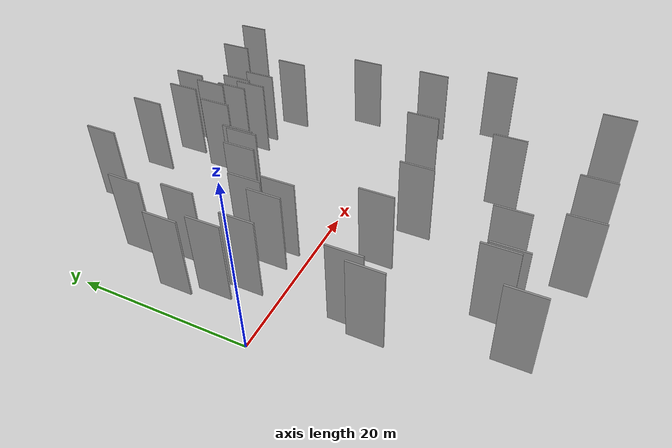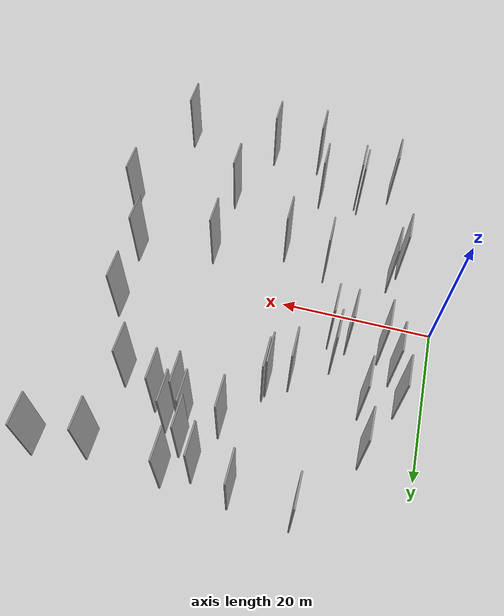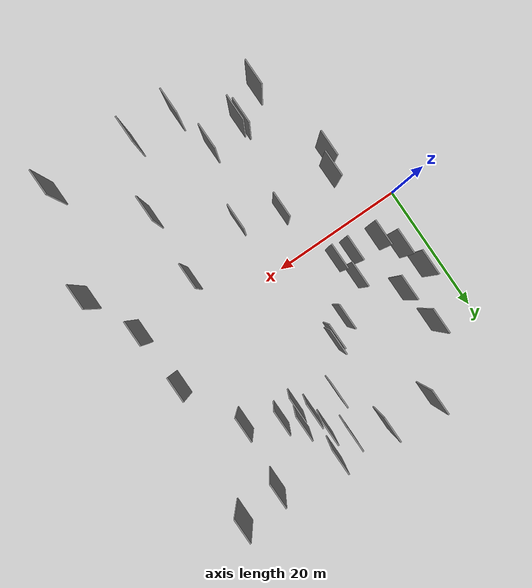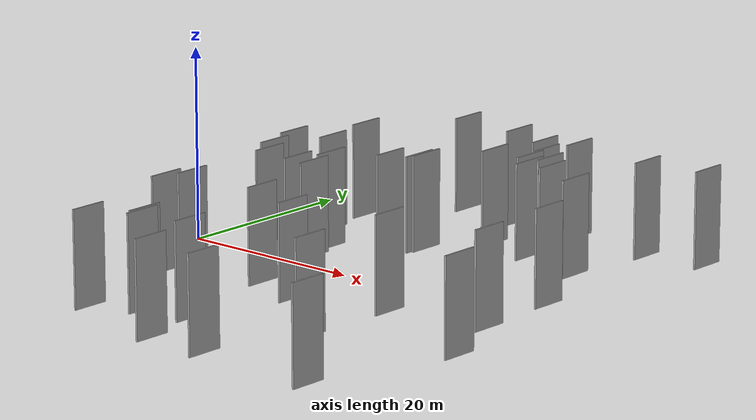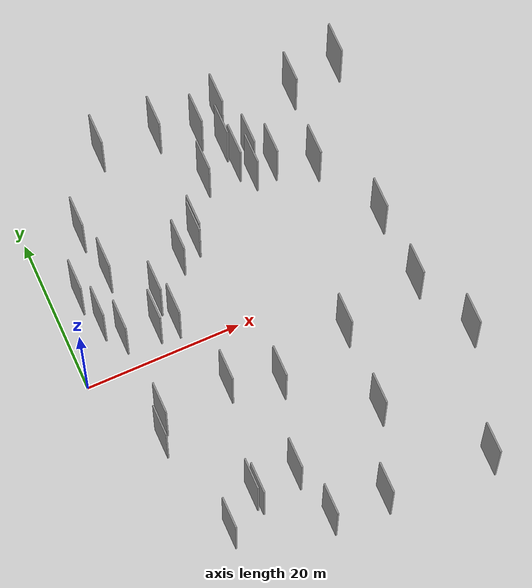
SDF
<sdf version="1.6">
 <world name="default">
  <scene>
   <sky><clouds><speed>12</speed></clouds></sky>
   <ambient>0.4 0.4 0.4 1</ambient>
   <background>0.7 0.7 0.7 1</background>
   <shadows>1</shadows>
  </scene>
  <gravity>0 0 -9.8066</gravity>
  <magnetic_field>6e-06 2.3e-05 -4.2e-05</magnetic_field>
  <physics default="0" name="default_physics" type="ode">
   <ode>
    <solver>
     <type>quick</type>
     <iters>10</iters>
     <sor>1.0</sor>
     <use_dynamic_moi_rescaling>0</use_dynamic_moi_rescaling>
    </solver>
    <constraints>
     <cfm>0</cfm>
     <erp>0.2</erp>
     <contact_max_correcting_vel>100</contact_max_correcting_vel>
     <contact_surface_layer>0.001</contact_surface_layer>
    </constraints>
   </ode>
   <max_step_size>0.004</max_step_size>
   <real_time_factor>1</real_time_factor>
   <real_time_update_rate>250</real_time_update_rate>
  </physics>
  <light name="sun" type="directional">
   <pose>0 0 10 0 0 0</pose>
   <diffuse>0.8 0.8 0.8 1</diffuse>
   <specular>0.2 0.2 0.2 1</specular>
   <attenuation>
    <range>1000</range>
    <constant>0.9</constant>
    <linear>0.01</linear>
    <quadratic>0.001</quadratic>
   </attenuation>
   <direction>-0.5 0.1 -0.9</direction>
  </light>
  <model name="grey_wall_1">
   <static>1</static>
   <pose>27.8386 19.0974 0.0 0.000000 0.000000 1.570796</pose>
   <link name="link">
    <pose>0 0 5.00 0 0 0</pose>
    <collision name="collision"><geometry><box><size>4.00 0.2 10.00</size></box></geometry></collision>
    <visual name="visual">
     <cast_shadows>0</cast_shadows>
     <geometry><box><size>4.00 0.2 10.00</size></box></geometry>
     <material>
      <script>
       <uri>model://grey_wall/materials/scripts</uri>
       <uri>model://grey_wall/materials/textures</uri>
       <name>vrc/grey_wall</name>
      </script>
     </material>
    </visual>
   </link>
  </model>
  <model name="grey_wall_2">
   <static>1</static>
   <pose>31.9971 17.4244 0.0 0.000000 0.000000 1.570796</pose>
   <link name="link">
    <pose>0 0 5.00 0 0 0</pose>
    <collision name="collision"><geometry><box><size>4.00 0.2 10.00</size></box></geometry></collision>
    <visual name="visual">
     <cast_shadows>0</cast_shadows>
     <geometry><box><size>4.00 0.2 10.00</size></box></geometry>
     <material>
      <script>
       <uri>model://grey_wall/materials/scripts</uri>
       <uri>model://grey_wall/materials/textures</uri>
       <name>vrc/grey_wall</name>
      </script>
     </material>
    </visual>
   </link>
  </model>
  <model name="grey_wall_3">
   <static>1</static>
   <pose>6.2617 3.9790 0.0 0.000000 0.000000 1.570796</pose>
   <link name="link">
    <pose>0 0 5.00 0 0 0</pose>
    <collision name="collision"><geometry><box><size>4.00 0.2 10.00</size></box></geometry></collision>
    <visual name="visual">
     <cast_shadows>0</cast_shadows>
     <geometry><box><size>4.00 0.2 10.00</size></box></geometry>
     <material>
      <script>
       <uri>model://grey_wall/materials/scripts</uri>
       <uri>model://grey_wall/materials/textures</uri>
       <name>vrc/grey_wall</name>
      </script>
     </material>
    </visual>
   </link>
  </model>
  <model name="grey_wall_4">
   <static>1</static>
   <pose>7.5539 12.0674 0.0 0.000000 0.000000 1.570796</pose>
   <link name="link">
    <pose>0 0 5.00 0 0 0</pose>
    <collision name="collision"><geometry><box><size>4.00 0.2 10.00</size></box></geometry></collision>
    <visual name="visual">
     <cast_shadows>0</cast_shadows>
     <geometry><box><size>4.00 0.2 10.00</size></box></geometry>
     <material>
      <script>
       <uri>model://grey_wall/materials/scripts</uri>
       <uri>model://grey_wall/materials/textures</uri>
       <name>vrc/grey_wall</name>
      </script>
     </material>
    </visual>
   </link>
  </model>
  <model name="grey_wall_5">
   <static>1</static>
   <pose>16.6574 10.5608 0.0 0.000000 0.000000 1.570796</pose>
   <link name="link">
    <pose>0 0 5.00 0 0 0</pose>
    <collision name="collision"><geometry><box><size>4.00 0.2 10.00</size></box></geometry></collision>
    <visual name="visual">
     <cast_shadows>0</cast_shadows>
     <geometry><box><size>4.00 0.2 10.00</size></box></geometry>
     <material>
      <script>
       <uri>model://grey_wall/materials/scripts</uri>
       <uri>model://grey_wall/materials/textures</uri>
       <name>vrc/grey_wall</name>
      </script>
     </material>
    </visual>
   </link>
  </model>
  <model name="grey_wall_6">
   <static>1</static>
   <pose>40.6920 -27.8204 0.0 0.000000 0.000000 1.570796</pose>
   <link name="link">
    <pose>0 0 5.00 0 0 0</pose>
    <collision name="collision"><geometry><box><size>4.00 0.2 10.00</size></box></geometry></collision>
    <visual name="visual">
     <cast_shadows>0</cast_shadows>
     <geometry><box><size>4.00 0.2 10.00</size></box></geometry>
     <material>
      <script>
       <uri>model://grey_wall/materials/scripts</uri>
       <uri>model://grey_wall/materials/textures</uri>
       <name>vrc/grey_wall</name>
      </script>
     </material>
    </visual>
   </link>
  </model>
  <model name="grey_wall_7">
   <static>1</static>
   <pose>21.4658 -9.0196 0.0 0.000000 0.000000 1.570796</pose>
   <link name="link">
    <pose>0 0 5.00 0 0 0</pose>
    <collision name="collision"><geometry><box><size>4.00 0.2 10.00</size></box></geometry></collision>
    <visual name="visual">
     <cast_shadows>0</cast_shadows>
     <geometry><box><size>4.00 0.2 10.00</size></box></geometry>
     <material>
      <script>
       <uri>model://grey_wall/materials/scripts</uri>
       <uri>model://grey_wall/materials/textures</uri>
       <name>vrc/grey_wall</name>
      </script>
     </material>
    </visual>
   </link>
  </model>
  <model name="grey_wall_8">
   <static>1</static>
   <pose>36.7858 15.1827 0.0 0.000000 0.000000 1.570796</pose>
   <link name="link">
    <pose>0 0 5.00 0 0 0</pose>
    <collision name="collision"><geometry><box><size>4.00 0.2 10.00</size></box></geometry></collision>
    <visual name="visual">
     <cast_shadows>0</cast_shadows>
     <geometry><box><size>4.00 0.2 10.00</size></box></geometry>
     <material>
      <script>
       <uri>model://grey_wall/materials/scripts</uri>
       <uri>model://grey_wall/materials/textures</uri>
       <name>vrc/grey_wall</name>
      </script>
     </material>
    </visual>
   </link>
  </model>
  <model name="grey_wall_9">
   <static>1</static>
   <pose>31.3133 -6.1245 0.0 0.000000 0.000000 1.570796</pose>
   <link name="link">
    <pose>0 0 5.00 0 0 0</pose>
    <collision name="collision"><geometry><box><size>4.00 0.2 10.00</size></box></geometry></collision>
    <visual name="visual">
     <cast_shadows>0</cast_shadows>
     <geometry><box><size>4.00 0.2 10.00</size></box></geometry>
     <material>
      <script>
       <uri>model://grey_wall/materials/scripts</uri>
       <uri>model://grey_wall/materials/textures</uri>
       <name>vrc/grey_wall</name>
      </script>
     </material>
    </visual>
   </link>
  </model>
  <model name="grey_wall_10">
   <static>1</static>
   <pose>13.2317 -21.1327 0.0 0.000000 0.000000 1.570796</pose>
   <link name="link">
    <pose>0 0 5.00 0 0 0</pose>
    <collision name="collision"><geometry><box><size>4.00 0.2 10.00</size></box></geometry></collision>
    <visual name="visual">
     <cast_shadows>0</cast_shadows>
     <geometry><box><size>4.00 0.2 10.00</size></box></geometry>
     <material>
      <script>
       <uri>model://grey_wall/materials/scripts</uri>
       <uri>model://grey_wall/materials/textures</uri>
       <name>vrc/grey_wall</name>
      </script>
     </material>
    </visual>
   </link>
  </model>
  <model name="grey_wall_11">
   <static>1</static>
   <pose>12.0053 6.8446 0.0 0.000000 0.000000 1.570796</pose>
   <link name="link">
    <pose>0 0 5.00 0 0 0</pose>
    <collision name="collision"><geometry><box><size>4.00 0.2 10.00</size></box></geometry></collision>
    <visual name="visual">
     <cast_shadows>0</cast_shadows>
     <geometry><box><size>4.00 0.2 10.00</size></box></geometry>
     <material>
      <script>
       <uri>model://grey_wall/materials/scripts</uri>
       <uri>model://grey_wall/materials/textures</uri>
       <name>vrc/grey_wall</name>
      </script>
     </material>
    </visual>
   </link>
  </model>
  <model name="grey_wall_12">
   <static>1</static>
   <pose>28.4717 26.1268 0.0 0.000000 0.000000 1.570796</pose>
   <link name="link">
    <pose>0 0 5.00 0 0 0</pose>
    <collision name="collision"><geometry><box><size>4.00 0.2 10.00</size></box></geometry></collision>
    <visual name="visual">
     <cast_shadows>0</cast_shadows>
     <geometry><box><size>4.00 0.2 10.00</size></box></geometry>
     <material>
      <script>
       <uri>model://grey_wall/materials/scripts</uri>
       <uri>model://grey_wall/materials/textures</uri>
       <name>vrc/grey_wall</name>
      </script>
     </material>
    </visual>
   </link>
  </model>
  <model name="grey_wall_13">
   <static>1</static>
   <pose>25.1381 24.7021 0.0 0.000000 0.000000 1.570796</pose>
   <link name="link">
    <pose>0 0 5.00 0 0 0</pose>
    <collision name="collision"><geometry><box><size>4.00 0.2 10.00</size></box></geometry></collision>
    <visual name="visual">
     <cast_shadows>0</cast_shadows>
     <geometry><box><size>4.00 0.2 10.00</size></box></geometry>
     <material>
      <script>
       <uri>model://grey_wall/materials/scripts</uri>
       <uri>model://grey_wall/materials/textures</uri>
       <name>vrc/grey_wall</name>
      </script>
     </material>
    </visual>
   </link>
  </model>
  <model name="grey_wall_14">
   <static>1</static>
   <pose>12.9309 3.3106 0.0 0.000000 0.000000 1.570796</pose>
   <link name="link">
    <pose>0 0 5.00 0 0 0</pose>
    <collision name="collision"><geometry><box><size>4.00 0.2 10.00</size></box></geometry></collision>
    <visual name="visual">
     <cast_shadows>0</cast_shadows>
     <geometry><box><size>4.00 0.2 10.00</size></box></geometry>
     <material>
      <script>
       <uri>model://grey_wall/materials/scripts</uri>
       <uri>model://grey_wall/materials/textures</uri>
       <name>vrc/grey_wall</name>
      </script>
     </material>
    </visual>
   </link>
  </model>
  <model name="grey_wall_15">
   <static>1</static>
   <pose>6.6121 18.1727 0.0 0.000000 0.000000 1.570796</pose>
   <link name="link">
    <pose>0 0 5.00 0 0 0</pose>
    <collision name="collision"><geometry><box><size>4.00 0.2 10.00</size></box></geometry></collision>
    <visual name="visual">
     <cast_shadows>0</cast_shadows>
     <geometry><box><size>4.00 0.2 10.00</size></box></geometry>
     <material>
      <script>
       <uri>model://grey_wall/materials/scripts</uri>
       <uri>model://grey_wall/materials/textures</uri>
       <name>vrc/grey_wall</name>
      </script>
     </material>
    </visual>
   </link>
  </model>
  <model name="grey_wall_16">
   <static>1</static>
   <pose>10.5438 3.5574 0.0 0.000000 0.000000 1.570796</pose>
   <link name="link">
    <pose>0 0 5.00 0 0 0</pose>
    <collision name="collision"><geometry><box><size>4.00 0.2 10.00</size></box></geometry></collision>
    <visual name="visual">
     <cast_shadows>0</cast_shadows>
     <geometry><box><size>4.00 0.2 10.00</size></box></geometry>
     <material>
      <script>
       <uri>model://grey_wall/materials/scripts</uri>
       <uri>model://grey_wall/materials/textures</uri>
       <name>vrc/grey_wall</name>
      </script>
     </material>
    </visual>
   </link>
  </model>
  <model name="grey_wall_17">
   <static>1</static>
   <pose>37.9804 25.1454 0.0 0.000000 0.000000 1.570796</pose>
   <link name="link">
    <pose>0 0 5.00 0 0 0</pose>
    <collision name="collision"><geometry><box><size>4.00 0.2 10.00</size></box></geometry></collision>
    <visual name="visual">
     <cast_shadows>0</cast_shadows>
     <geometry><box><size>4.00 0.2 10.00</size></box></geometry>
     <material>
      <script>
       <uri>model://grey_wall/materials/scripts</uri>
       <uri>model://grey_wall/materials/textures</uri>
       <name>vrc/grey_wall</name>
      </script>
     </material>
    </visual>
   </link>
  </model>
  <model name="grey_wall_18">
   <static>1</static>
   <pose>30.9320 -16.8764 0.0 0.000000 0.000000 1.570796</pose>
   <link name="link">
    <pose>0 0 5.00 0 0 0</pose>
    <collision name="collision"><geometry><box><size>4.00 0.2 10.00</size></box></geometry></collision>
    <visual name="visual">
     <cast_shadows>0</cast_shadows>
     <geometry><box><size>4.00 0.2 10.00</size></box></geometry>
     <material>
      <script>
       <uri>model://grey_wall/materials/scripts</uri>
       <uri>model://grey_wall/materials/textures</uri>
       <name>vrc/grey_wall</name>
      </script>
     </material>
    </visual>
   </link>
  </model>
  <model name="grey_wall_19">
   <static>1</static>
   <pose>6.5469 -7.4695 0.0 0.000000 0.000000 1.570796</pose>
   <link name="link">
    <pose>0 0 5.00 0 0 0</pose>
    <collision name="collision"><geometry><box><size>4.00 0.2 10.00</size></box></geometry></collision>
    <visual name="visual">
     <cast_shadows>0</cast_shadows>
     <geometry><box><size>4.00 0.2 10.00</size></box></geometry>
     <material>
      <script>
       <uri>model://grey_wall/materials/scripts</uri>
       <uri>model://grey_wall/materials/textures</uri>
       <name>vrc/grey_wall</name>
      </script>
     </material>
    </visual>
   </link>
  </model>
  <model name="grey_wall_20">
   <static>1</static>
   <pose>45.3278 -12.3080 0.0 0.000000 0.000000 1.570796</pose>
   <link name="link">
    <pose>0 0 5.00 0 0 0</pose>
    <collision name="collision"><geometry><box><size>4.00 0.2 10.00</size></box></geometry></collision>
    <visual name="visual">
     <cast_shadows>0</cast_shadows>
     <geometry><box><size>4.00 0.2 10.00</size></box></geometry>
     <material>
      <script>
       <uri>model://grey_wall/materials/scripts</uri>
       <uri>model://grey_wall/materials/textures</uri>
       <name>vrc/grey_wall</name>
      </script>
     </material>
    </visual>
   </link>
  </model>
  <model name="grey_wall_21">
   <static>1</static>
   <pose>12.7828 -20.3886 0.0 0.000000 0.000000 1.570796</pose>
   <link name="link">
    <pose>0 0 5.00 0 0 0</pose>
    <collision name="collision"><geometry><box><size>4.00 0.2 10.00</size></box></geometry></collision>
    <visual name="visual">
     <cast_shadows>0</cast_shadows>
     <geometry><box><size>4.00 0.2 10.00</size></box></geometry>
     <material>
      <script>
       <uri>model://grey_wall/materials/scripts</uri>
       <uri>model://grey_wall/materials/textures</uri>
       <name>vrc/grey_wall</name>
      </script>
     </material>
    </visual>
   </link>
  </model>
  <model name="grey_wall_22">
   <static>1</static>
   <pose>41.7728 -3.8706 0.0 0.000000 0.000000 1.570796</pose>
   <link name="link">
    <pose>0 0 5.00 0 0 0</pose>
    <collision name="collision"><geometry><box><size>4.00 0.2 10.00</size></box></geometry></collision>
    <visual name="visual">
     <cast_shadows>0</cast_shadows>
     <geometry><box><size>4.00 0.2 10.00</size></box></geometry>
     <material>
      <script>
       <uri>model://grey_wall/materials/scripts</uri>
       <uri>model://grey_wall/materials/textures</uri>
       <name>vrc/grey_wall</name>
      </script>
     </material>
    </visual>
   </link>
  </model>
  <model name="grey_wall_23">
   <static>1</static>
   <pose>27.1273 -27.1940 0.0 0.000000 0.000000 1.570796</pose>
   <link name="link">
    <pose>0 0 5.00 0 0 0</pose>
    <collision name="collision"><geometry><box><size>4.00 0.2 10.00</size></box></geometry></collision>
    <visual name="visual">
     <cast_shadows>0</cast_shadows>
     <geometry><box><size>4.00 0.2 10.00</size></box></geometry>
     <material>
      <script>
       <uri>model://grey_wall/materials/scripts</uri>
       <uri>model://grey_wall/materials/textures</uri>
       <name>vrc/grey_wall</name>
      </script>
     </material>
    </visual>
   </link>
  </model>
  <model name="grey_wall_24">
   <static>1</static>
   <pose>23.5302 18.7064 0.0 0.000000 0.000000 1.570796</pose>
   <link name="link">
    <pose>0 0 5.00 0 0 0</pose>
    <collision name="collision"><geometry><box><size>4.00 0.2 10.00</size></box></geometry></collision>
    <visual name="visual">
     <cast_shadows>0</cast_shadows>
     <geometry><box><size>4.00 0.2 10.00</size></box></geometry>
     <material>
      <script>
       <uri>model://grey_wall/materials/scripts</uri>
       <uri>model://grey_wall/materials/textures</uri>
       <name>vrc/grey_wall</name>
      </script>
     </material>
    </visual>
   </link>
  </model>
  <model name="grey_wall_25">
   <static>1</static>
   <pose>5.4879 -10.0542 0.0 0.000000 0.000000 1.570796</pose>
   <link name="link">
    <pose>0 0 5.00 0 0 0</pose>
    <collision name="collision"><geometry><box><size>4.00 0.2 10.00</size></box></geometry></collision>
    <visual name="visual">
     <cast_shadows>0</cast_shadows>
     <geometry><box><size>4.00 0.2 10.00</size></box></geometry>
     <material>
      <script>
       <uri>model://grey_wall/materials/scripts</uri>
       <uri>model://grey_wall/materials/textures</uri>
       <name>vrc/grey_wall</name>
      </script>
     </material>
    </visual>
   </link>
  </model>
  <model name="grey_wall_26">
   <static>1</static>
   <pose>19.5900 12.6999 0.0 0.000000 0.000000 1.570796</pose>
   <link name="link">
    <pose>0 0 5.00 0 0 0</pose>
    <collision name="collision"><geometry><box><size>4.00 0.2 10.00</size></box></geometry></collision>
    <visual name="visual">
     <cast_shadows>0</cast_shadows>
     <geometry><box><size>4.00 0.2 10.00</size></box></geometry>
     <material>
      <script>
       <uri>model://grey_wall/materials/scripts</uri>
       <uri>model://grey_wall/materials/textures</uri>
       <name>vrc/grey_wall</name>
      </script>
     </material>
    </visual>
   </link>
  </model>
  <model name="grey_wall_27">
   <static>1</static>
   <pose>44.5919 26.3333 0.0 0.000000 0.000000 1.570796</pose>
   <link name="link">
    <pose>0 0 5.00 0 0 0</pose>
    <collision name="collision"><geometry><box><size>4.00 0.2 10.00</size></box></geometry></collision>
    <visual name="visual">
     <cast_shadows>0</cast_shadows>
     <geometry><box><size>4.00 0.2 10.00</size></box></geometry>
     <material>
      <script>
       <uri>model://grey_wall/materials/scripts</uri>
       <uri>model://grey_wall/materials/textures</uri>
       <name>vrc/grey_wall</name>
      </script>
     </material>
    </visual>
   </link>
  </model>
  <model name="grey_wall_28">
   <static>1</static>
   <pose>29.9393 19.6891 0.0 0.000000 0.000000 1.570796</pose>
   <link name="link">
    <pose>0 0 5.00 0 0 0</pose>
    <collision name="collision"><geometry><box><size>4.00 0.2 10.00</size></box></geometry></collision>
    <visual name="visual">
     <cast_shadows>0</cast_shadows>
     <geometry><box><size>4.00 0.2 10.00</size></box></geometry>
     <material>
      <script>
       <uri>model://grey_wall/materials/scripts</uri>
       <uri>model://grey_wall/materials/textures</uri>
       <name>vrc/grey_wall</name>
      </script>
     </material>
    </visual>
   </link>
  </model>
  <model name="grey_wall_29">
   <static>1</static>
   <pose>15.4173 -6.8650 0.0 0.000000 0.000000 1.570796</pose>
   <link name="link">
    <pose>0 0 5.00 0 0 0</pose>
    <collision name="collision"><geometry><box><size>4.00 0.2 10.00</size></box></geometry></collision>
    <visual name="visual">
     <cast_shadows>0</cast_shadows>
     <geometry><box><size>4.00 0.2 10.00</size></box></geometry>
     <material>
      <script>
       <uri>model://grey_wall/materials/scripts</uri>
       <uri>model://grey_wall/materials/textures</uri>
       <name>vrc/grey_wall</name>
      </script>
     </material>
    </visual>
   </link>
  </model>
  <model name="grey_wall_30">
   <static>1</static>
   <pose>12.9044 27.0960 0.0 0.000000 0.000000 1.570796</pose>
   <link name="link">
    <pose>0 0 5.00 0 0 0</pose>
    <collision name="collision"><geometry><box><size>4.00 0.2 10.00</size></box></geometry></collision>
    <visual name="visual">
     <cast_shadows>0</cast_shadows>
     <geometry><box><size>4.00 0.2 10.00</size></box></geometry>
     <material>
      <script>
       <uri>model://grey_wall/materials/scripts</uri>
       <uri>model://grey_wall/materials/textures</uri>
       <name>vrc/grey_wall</name>
      </script>
     </material>
    </visual>
   </link>
  </model>
  <model name="grey_wall_31">
   <static>1</static>
   <pose>3.3130 10.8329 0.0 0.000000 0.000000 1.570796</pose>
   <link name="link">
    <pose>0 0 5.00 0 0 0</pose>
    <collision name="collision"><geometry><box><size>4.00 0.2 10.00</size></box></geometry></collision>
    <visual name="visual">
     <cast_shadows>0</cast_shadows>
     <geometry><box><size>4.00 0.2 10.00</size></box></geometry>
     <material>
      <script>
       <uri>model://grey_wall/materials/scripts</uri>
       <uri>model://grey_wall/materials/textures</uri>
       <name>vrc/grey_wall</name>
      </script>
     </material>
    </visual>
   </link>
  </model>
  <model name="grey_wall_32">
   <static>1</static>
   <pose>19.3069 11.9781 0.0 0.000000 0.000000 1.570796</pose>
   <link name="link">
    <pose>0 0 5.00 0 0 0</pose>
    <collision name="collision"><geometry><box><size>4.00 0.2 10.00</size></box></geometry></collision>
    <visual name="visual">
     <cast_shadows>0</cast_shadows>
     <geometry><box><size>4.00 0.2 10.00</size></box></geometry>
     <material>
      <script>
       <uri>model://grey_wall/materials/scripts</uri>
       <uri>model://grey_wall/materials/textures</uri>
       <name>vrc/grey_wall</name>
      </script>
     </material>
    </visual>
   </link>
  </model>
  <model name="grey_wall_33">
   <static>1</static>
   <pose>8.4909 -23.6566 0.0 0.000000 0.000000 1.570796</pose>
   <link name="link">
    <pose>0 0 5.00 0 0 0</pose>
    <collision name="collision"><geometry><box><size>4.00 0.2 10.00</size></box></geometry></collision>
    <visual name="visual">
     <cast_shadows>0</cast_shadows>
     <geometry><box><size>4.00 0.2 10.00</size></box></geometry>
     <material>
      <script>
       <uri>model://grey_wall/materials/scripts</uri>
       <uri>model://grey_wall/materials/textures</uri>
       <name>vrc/grey_wall</name>
      </script>
     </material>
    </visual>
   </link>
  </model>
  <model name="grey_wall_34">
   <static>1</static>
   <pose>27.4336 22.1341 0.0 0.000000 0.000000 1.570796</pose>
   <link name="link">
    <pose>0 0 5.00 0 0 0</pose>
    <collision name="collision"><geometry><box><size>4.00 0.2 10.00</size></box></geometry></collision>
    <visual name="visual">
     <cast_shadows>0</cast_shadows>
     <geometry><box><size>4.00 0.2 10.00</size></box></geometry>
     <material>
      <script>
       <uri>model://grey_wall/materials/scripts</uri>
       <uri>model://grey_wall/materials/textures</uri>
       <name>vrc/grey_wall</name>
      </script>
     </material>
    </visual>
   </link>
  </model>
  <model name="grey_wall_35">
   <static>1</static>
   <pose>29.2707 17.1429 0.0 0.000000 0.000000 1.570796</pose>
   <link name="link">
    <pose>0 0 5.00 0 0 0</pose>
    <collision name="collision"><geometry><box><size>4.00 0.2 10.00</size></box></geometry></collision>
    <visual name="visual">
     <cast_shadows>0</cast_shadows>
     <geometry><box><size>4.00 0.2 10.00</size></box></geometry>
     <material>
      <script>
       <uri>model://grey_wall/materials/scripts</uri>
       <uri>model://grey_wall/materials/textures</uri>
       <name>vrc/grey_wall</name>
      </script>
     </material>
    </visual>
   </link>
  </model>
  <model name="grey_wall_36">
   <static>1</static>
   <pose>4.4625 6.6379 0.0 0.000000 0.000000 1.570796</pose>
   <link name="link">
    <pose>0 0 5.00 0 0 0</pose>
    <collision name="collision"><geometry><box><size>4.00 0.2 10.00</size></box></geometry></collision>
    <visual name="visual">
     <cast_shadows>0</cast_shadows>
     <geometry><box><size>4.00 0.2 10.00</size></box></geometry>
     <material>
      <script>
       <uri>model://grey_wall/materials/scripts</uri>
       <uri>model://grey_wall/materials/textures</uri>
       <name>vrc/grey_wall</name>
      </script>
     </material>
    </visual>
   </link>
  </model>
  <model name="grey_wall_37">
   <static>1</static>
   <pose>18.5392 -20.1338 0.0 0.000000 0.000000 1.570796</pose>
   <link name="link">
    <pose>0 0 5.00 0 0 0</pose>
    <collision name="collision"><geometry><box><size>4.00 0.2 10.00</size></box></geometry></collision>
    <visual name="visual">
     <cast_shadows>0</cast_shadows>
     <geometry><box><size>4.00 0.2 10.00</size></box></geometry>
     <material>
      <script>
       <uri>model://grey_wall/materials/scripts</uri>
       <uri>model://grey_wall/materials/textures</uri>
       <name>vrc/grey_wall</name>
      </script>
     </material>
    </visual>
   </link>
  </model>
  <model name="grey_wall_38">
   <static>1</static>
   <pose>20.2802 26.5003 0.0 0.000000 0.000000 1.570796</pose>
   <link name="link">
    <pose>0 0 5.00 0 0 0</pose>
    <collision name="collision"><geometry><box><size>4.00 0.2 10.00</size></box></geometry></collision>
    <visual name="visual">
     <cast_shadows>0</cast_shadows>
     <geometry><box><size>4.00 0.2 10.00</size></box></geometry>
     <material>
      <script>
       <uri>model://grey_wall/materials/scripts</uri>
       <uri>model://grey_wall/materials/textures</uri>
       <name>vrc/grey_wall</name>
      </script>
     </material>
    </visual>
   </link>
  </model>
  <model name="grey_wall_39">
   <static>1</static>
   <pose>41.2746 5.5982 0.0 0.000000 0.000000 1.570796</pose>
   <link name="link">
    <pose>0 0 5.00 0 0 0</pose>
    <collision name="collision"><geometry><box><size>4.00 0.2 10.00</size></box></geometry></collision>
    <visual name="visual">
     <cast_shadows>0</cast_shadows>
     <geometry><box><size>4.00 0.2 10.00</size></box></geometry>
     <material>
      <script>
       <uri>model://grey_wall/materials/scripts</uri>
       <uri>model://grey_wall/materials/textures</uri>
       <name>vrc/grey_wall</name>
      </script>
     </material>
    </visual>
   </link>
  </model>
  <model name="grey_wall_40">
   <static>1</static>
   <pose>20.0816 -26.9500 0.0 0.000000 0.000000 1.570796</pose>
   <link name="link">
    <pose>0 0 5.00 0 0 0</pose>
    <collision name="collision"><geometry><box><size>4.00 0.2 10.00</size></box></geometry></collision>
    <visual name="visual">
     <cast_shadows>0</cast_shadows>
     <geometry><box><size>4.00 0.2 10.00</size></box></geometry>
     <material>
      <script>
       <uri>model://grey_wall/materials/scripts</uri>
       <uri>model://grey_wall/materials/textures</uri>
       <name>vrc/grey_wall</name>
      </script>
     </material>
    </visual>
   </link>
  </model>
 </world>
</sdf>
